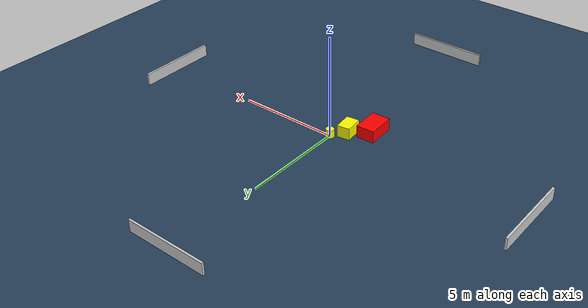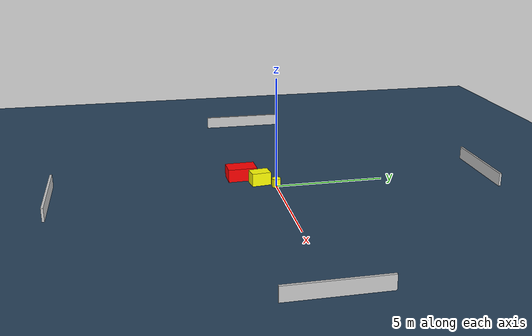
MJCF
<?xml version="1.0" ?>
<mujoco model="generated_environment">
  <option timestep="0.01" integrator="RK4" cone="elliptic"/>
  <default>
    <geom density="1"/>
  </default>
  <asset>
    <texture builtin="gradient" height="3072" name="skybox" rgb1="0.3 0.5 0.7" rgb2="0 0 0" type="skybox" width="512"/>
    <texture builtin="checker" height="300" name="groundplane" rgb1="0.2 0.3 0.4" rgb2="0.1 0.2 0.3" type="2d" width="300"/>
    <material name="groundplane" reflectance="0.2" texrepeat="5 5" texture="groundplane"/>
  </asset>
  <worldbody>
    <light dir="0 0 -1" directional="true" pos="0 0 1.5"/>
    <geom condim="3" friction="0.5 0.005 0.001" material="groundplane" name="floor" pos="0 0 0" size="0 0 0.05" type="plane"/>
    <body name="walls">
      <geom name="wall_1" condim="4" pos="-10.0 0.0 0.3" rgba="0.800000011920929 0.800000011920929 0.800000011920929 1.0" size="0.05 2.0 0.3" type="box"/>
      <geom name="wall_2" condim="4" pos="10.0 0.0 0.3" rgba="0.800000011920929 0.800000011920929 0.800000011920929 1.0" size="0.05 2.0 0.3" type="box"/>
      <geom name="wall_3" condim="4" pos="0.0 -10.0 0.3" rgba="0.800000011920929 0.800000011920929 0.800000011920929 1.0" size="2.0 0.05 0.3" type="box"/>
      <geom name="wall_4" condim="4" pos="0.0 10.0 0.3" rgba="0.800000011920929 0.800000011920929 0.800000011920929 1.0" size="2.0 0.05 0.3" type="box"/>
    </body>
    <body name="robot">
      <joint name="joint_x" type="slide" pos="0 0 0" axis="1 0 0"/>
      <joint name="joint_y" type="slide" pos="0 0 0" axis="0 1 0"/>
      <geom name="robot" type="cylinder" pos="0.0 0.0 0.2" size="0.2 0.2 0.0" mass="5.0" friction="1.0 0.005 0.0001" condim="4" rgba="1.0 1.0 0.0 1.0"/>
    </body>
    <body name="obstacle_1_movable">
      <geom name="obstacle_1_movable" condim="4" pos="-0.5293134532080984 -0.659454096816241 0.3" euler="0 0 276.9930745664841" friction="0.0 0.005 0.001" rgba="1.0 1.0 0.0 1.0" size="0.44371305454893123 0.31319975698704416 0.3" type="box" mass="0.1"/>
      <joint type="free"/>
    </body>
    <body name="obstacle_2_static">
      <geom name="obstacle_2_static" condim="4" pos="-1.3927471867952208 -1.3936219698808812 0.3" euler="0 0 2.4185128929671507" friction="0.0 0.005 0.001" rgba="1.0 0.0 0.0 1.0" size="0.45003977075889523 0.6732551478970874 0.3" type="box"/>
    </body>
  </worldbody>
  <actuator>
    <motor name="actuator_x" joint="joint_x" gear="1" ctrlrange="-1 1"/>
    <motor name="actuator_y" joint="joint_y" gear="1" ctrlrange="-1 1"/>
  </actuator>
</mujoco>
